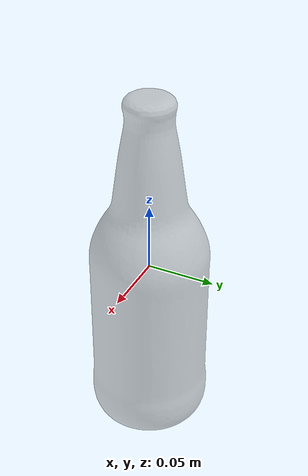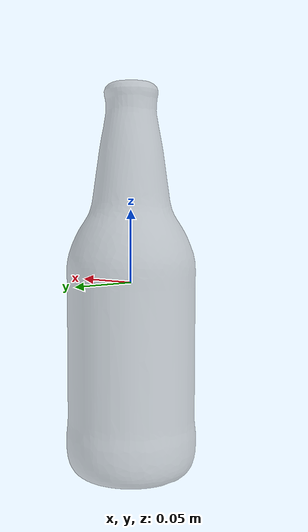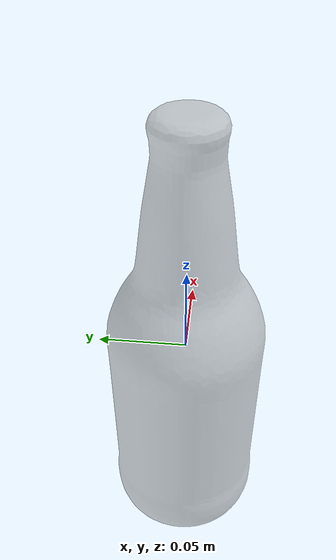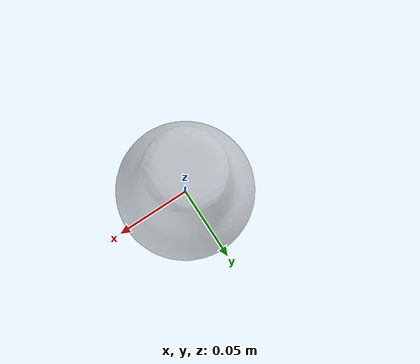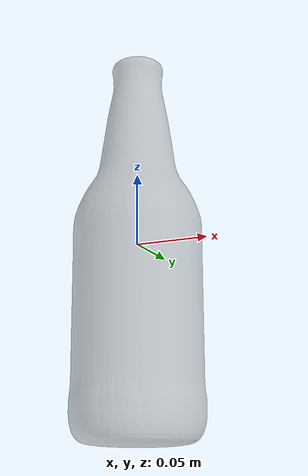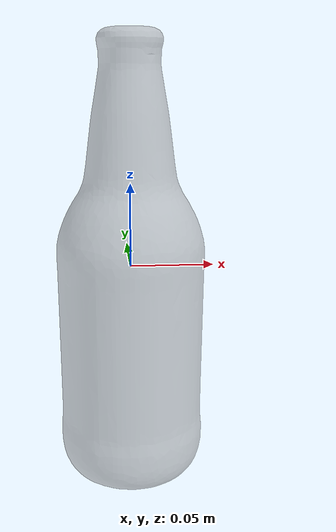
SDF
<?xml version='1.0'?>
<sdf version='1.4'>
  <model name="object">
    <link name='link'>
      <pose>0.0 0 0 0 0 0</pose>
      <inertial>
        <mass>1.174833</mass>
        <inertia>
          <ixx>0.00514472</ixx>
          <ixy>0</ixy>
          <ixz>0</ixz>
          <iyy>0.00514476</iyy>
          <iyz>0</iyz>
          <izz>0.00100870</izz>
        </inertia>
      </inertial>
      <collision name='c_bp_047'>
        <geometry>
          <mesh>
            <scale>1 1 1</scale>
            <uri>model://bottle_poisson_047/mesh/bottle_poisson_047.dae</uri>
          </mesh>
        </geometry>
        <surface>
          <contact>
            <ode>
              <kp>1000000</kp>
              <kd>100</kd>
              <max_vel>1000.0</max_vel>
              <min_depth>0.0</min_depth>
            </ode>
          </contact>
        </surface>
      </collision>

      <visual name='v_bp_047'>
        <geometry>
          <mesh>
            <scale>1 1 1</scale>
            <uri>model://bottle_poisson_047/mesh/bottle_poisson_047.dae</uri>
          </mesh>
        </geometry>
        <material>
          <script>
            <name>Gazebo/GreyTransparent</name>
            <uri>file://media/materials/scripts/gazebo.material</uri>
          </script>
        </material>
      </visual>

      <velocity_decay>
        <linear>0.0004</linear>
        <angular>0.0004</angular>
      </velocity_decay>
    </link>
  </model>
</sdf>
